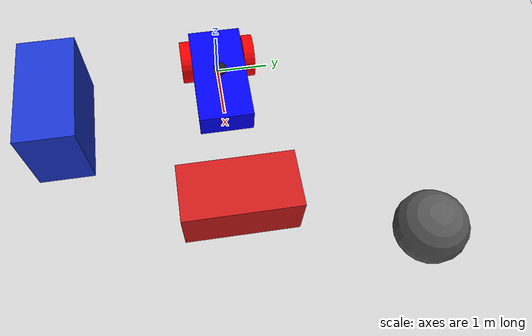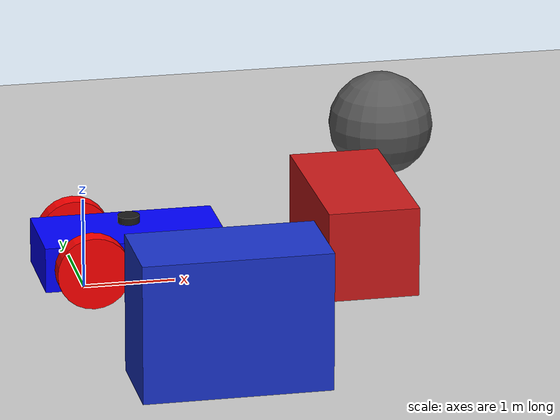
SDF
<?xml version="1.0" ?>
<sdf version="1.10">
  <world name="rover_world">

    <physics name="1ms" type="ignored">
      <max_step_size>0.001</max_step_size>
      <real_time_factor>1.0</real_time_factor>
    </physics>

    <plugin
      filename="gz-sim-physics-system"
      name="gz::sim::systems::Physics"/>

    <plugin
      filename="gz-sim-user-commands-system"
      name="gz::sim::systems::UserCommands"/>

    <plugin
      filename="gz-sim-scene-broadcaster-system"
      name="gz::sim::systems::SceneBroadcaster"/>

    <plugin
      filename="gz-sim-sensors-system"
      name="gz::sim::systems::Sensors">
      <render_engine>ogre2</render_engine>
    </plugin>

    <light type="directional" name="sun">
      <cast_shadows>true</cast_shadows>
      <pose>0 0 10 0 0 0</pose>
      <diffuse>0.8 0.8 0.8 1</diffuse>
      <specular>0.2 0.2 0.2 1</specular>
      <direction>-0.5 0.1 -0.9</direction>
    </light>

    <model name="ground_plane">
      <static>true</static>
      <link name="link">
        <collision name="collision">
          <geometry>
            <plane>
              <normal>0 0 1</normal>
            </plane>
          </geometry>
        </collision>

        <visual name="visual">
          <geometry>
            <plane>
              <normal>0 0 1</normal>
              <size>100 100</size>
            </plane>
          </geometry>
          <material>
            <ambient>0.8 0.8 0.8 1</ambient>
            <diffuse>0.8 0.8 0.8 1</diffuse>
          </material>
        </visual>
      </link>
    </model>

    <model name="box_obstacle_1">
      <static>true</static>
      <pose>3 0 0.5 0 0 0</pose>

      <link name="link">
        <collision name="collision">
          <geometry>
            <box>
              <size>1.0 2.0 1.0</size>
            </box>
          </geometry>
        </collision>

        <visual name="visual">
          <geometry>
            <box>
              <size>1.0 2.0 1.0</size>
            </box>
          </geometry>
          <material>
            <diffuse>0.8 0.1 0.1 1</diffuse>
          </material>
        </visual>
      </link>
    </model>

    <model name="box_obstacle_2">
      <static>true</static>
      <pose>1 -3 0.75 0 0 0</pose>

      <link name="link">
        <collision name="collision">
          <geometry>
            <box>
              <size>2.0 1.0 1.5</size>
            </box>
          </geometry>
        </collision>

        <visual name="visual">
          <geometry>
            <box>
              <size>2.0 1.0 1.5</size>
            </box>
          </geometry>
          <material>
            <diffuse>0.1 0.2 0.8 1</diffuse>
          </material>
        </visual>
      </link>
    </model>

    <model name="boulder_obstacle">
      <static>true</static>
      <pose>4 3 0.6 0 0 0</pose>

      <link name="link">
        <collision name="collision">
          <geometry>
            <sphere>
              <radius>0.6</radius>
            </sphere>
          </geometry>
        </collision>

        <visual name="visual">
          <geometry>
            <sphere>
              <radius>0.6</radius>
            </sphere>
          </geometry>
          <material>
            <diffuse>0.35 0.35 0.35 1</diffuse>
          </material>
        </visual>
      </link>
    </model>

    <include>
      <uri>model://rover</uri>
      <name>rover</name>
      <pose>0 0 0 0 0 0</pose>
    </include>

  </world>
</sdf>

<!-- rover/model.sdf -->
<sdf version="1.10">
  <model name="rover" canonical_link="chassis">

    <pose>0 0 0 0 0 0</pose>

    <link name="chassis">
      <pose relative_to="__model__">0.5 0 0.4 0 0 0</pose>

      <inertial>
        <mass>1.14395</mass>
        <inertia>
          <ixx>0.095329</ixx>
          <ixy>0</ixy>
          <ixz>0</ixz>
          <iyy>0.381317</iyy>
          <iyz>0</iyz>
          <izz>0.476646</izz>
        </inertia>
      </inertial>

      <visual name="visual">
        <geometry>
          <box>
            <size>2.0 1.0 0.5</size>
          </box>
        </geometry>
        <material>
          <ambient>0.0 0.0 1.0 1</ambient>
          <diffuse>0.0 0.0 1.0 1</diffuse>
        </material>
      </visual>

      <collision name="collision">
        <geometry>
          <box>
            <size>2.0 1.0 0.5</size>
          </box>
        </geometry>
      </collision>
    </link>

    <link name="left_wheel">
      <pose relative_to="chassis">-0.5 0.6 0 -1.5707 0 0</pose>

      <inertial>
        <mass>1</mass>
        <inertia>
          <ixx>0.043333</ixx>
          <ixy>0</ixy>
          <ixz>0</ixz>
          <iyy>0.043333</iyy>
          <iyz>0</iyz>
          <izz>0.08</izz>
        </inertia>
      </inertial>

      <visual name="visual">
        <geometry>
          <cylinder>
            <radius>0.4</radius>
            <length>0.2</length>
          </cylinder>
        </geometry>
        <material>
          <ambient>1.0 0.0 0.0 1</ambient>
          <diffuse>1.0 0.0 0.0 1</diffuse>
        </material>
      </visual>

      <collision name="collision">
        <geometry>
          <cylinder>
            <radius>0.4</radius>
            <length>0.2</length>
          </cylinder>
        </geometry>
      </collision>
    </link>

    <link name="right_wheel">
      <pose relative_to="chassis">-0.5 -0.6 0 -1.5707 0 0</pose>

      <inertial>
        <mass>1</mass>
        <inertia>
          <ixx>0.043333</ixx>
          <ixy>0</ixy>
          <ixz>0</ixz>
          <iyy>0.043333</iyy>
          <iyz>0</iyz>
          <izz>0.08</izz>
        </inertia>
      </inertial>

      <visual name="visual">
        <geometry>
          <cylinder>
            <radius>0.4</radius>
            <length>0.2</length>
          </cylinder>
        </geometry>
        <material>
          <ambient>1.0 0.0 0.0 1</ambient>
          <diffuse>1.0 0.0 0.0 1</diffuse>
        </material>
      </visual>

      <collision name="collision">
        <geometry>
          <cylinder>
            <radius>0.4</radius>
            <length>0.2</length>
          </cylinder>
        </geometry>
      </collision>
    </link>

    <frame name="caster_frame" attached_to="chassis">
      <pose>0.8 0 -0.2 0 0 0</pose>
    </frame>

    <link name="caster">
      <pose relative_to="caster_frame"/>

      <inertial>
        <mass>1</mass>
        <inertia>
          <ixx>0.016</ixx>
          <ixy>0</ixy>
          <ixz>0</ixz>
          <iyy>0.016</iyy>
          <iyz>0</iyz>
          <izz>0.016</izz>
        </inertia>
      </inertial>

      <visual name="visual">
        <geometry>
          <sphere>
            <radius>0.2</radius>
          </sphere>
        </geometry>
        <material>
          <ambient>0.0 1.0 0.0 1</ambient>
          <diffuse>0.0 1.0 0.0 1</diffuse>
        </material>
      </visual>

      <collision name="collision">
        <geometry>
          <sphere>
            <radius>0.2</radius>
          </sphere>
        </geometry>
      </collision>
    </link>

    <link name="lidar_link">
      <pose relative_to="chassis">0 0 0.35 0 0 0</pose>

      <inertial>
        <mass>0.1</mass>
        <inertia>
          <ixx>0.0002</ixx>
          <iyy>0.0002</iyy>
          <izz>0.0002</izz>
        </inertia>
      </inertial>

      <visual name="lidar_visual">
        <geometry>
          <cylinder>
            <radius>0.12</radius>
            <length>0.08</length>
          </cylinder>
        </geometry>
        <material>
          <ambient>0.1 0.1 0.1 1</ambient>
          <diffuse>0.1 0.1 0.1 1</diffuse>
        </material>
      </visual>

      <collision name="lidar_collision">
        <geometry>
          <cylinder>
            <radius>0.12</radius>
            <length>0.08</length>
          </cylinder>
        </geometry>
      </collision>

        <sensor name="lidar" type="gpu_lidar">
        <topic>/model/rover/scan</topic>
        <update_rate>10</update_rate>
        <always_on>true</always_on>
        <visualize>true</visualize>

        <lidar>
            <scan>
            <horizontal>
                <samples>360</samples>
                <resolution>1</resolution>
                <min_angle>-3.14159</min_angle>
                <max_angle>3.14159</max_angle>
            </horizontal>

            <vertical>
                <samples>1</samples>
                <resolution>1</resolution>
                <min_angle>0</min_angle>
                <max_angle>0</max_angle>
            </vertical>
            </scan>

            <range>
            <min>0.12</min>
            <max>10.0</max>
            <resolution>0.01</resolution>
            </range>
        </lidar>
        </sensor>
    </link>

    <joint name="left_wheel_joint" type="revolute">
      <pose relative_to="left_wheel"/>
      <parent>chassis</parent>
      <child>left_wheel</child>
      <axis>
        <xyz expressed_in="__model__">0 1 0</xyz>
        <limit>
          <lower>-1.79769e+308</lower>
          <upper>1.79769e+308</upper>
        </limit>
      </axis>
    </joint>

    <joint name="right_wheel_joint" type="revolute">
      <pose relative_to="right_wheel"/>
      <parent>chassis</parent>
      <child>right_wheel</child>
      <axis>
        <xyz expressed_in="__model__">0 1 0</xyz>
        <limit>
          <lower>-1.79769e+308</lower>
          <upper>1.79769e+308</upper>
        </limit>
      </axis>
    </joint>

    <joint name="caster_wheel" type="ball">
      <parent>chassis</parent>
      <child>caster</child>
    </joint>

    <joint name="lidar_joint" type="fixed">
      <parent>chassis</parent>
      <child>lidar_link</child>
    </joint>

    <plugin
      filename="gz-sim-diff-drive-system"
      name="gz::sim::systems::DiffDrive">
      <left_joint>left_wheel_joint</left_joint>
      <right_joint>right_wheel_joint</right_joint>
      <wheel_separation>1.2</wheel_separation>
      <wheel_radius>0.4</wheel_radius>
      <topic>/model/rover/cmd_vel</topic>
      <odom_topic>/model/rover/odometry</odom_topic>
      <tf_topic>/model/rover/tf</tf_topic>
      <frame_id>rover/odom</frame_id>
      <child_frame_id>rover/chassis</child_frame_id>
      <odom_publish_frequency>30</odom_publish_frequency>
    </plugin>

  </model>
</sdf>
